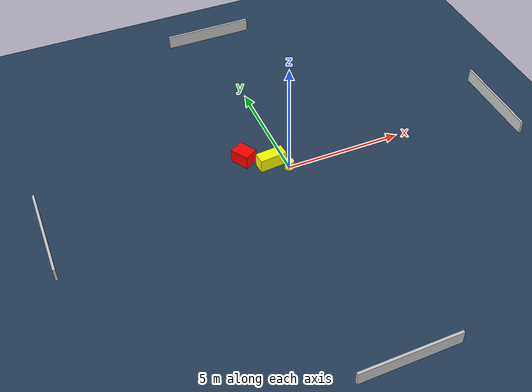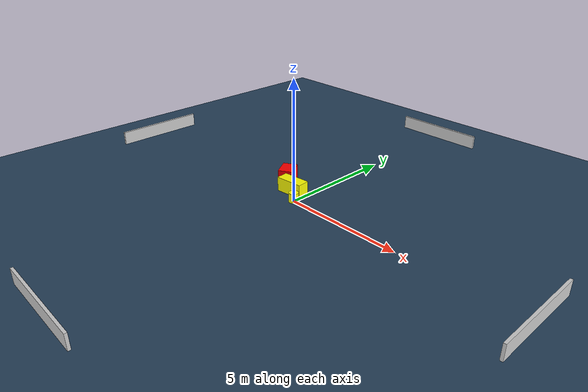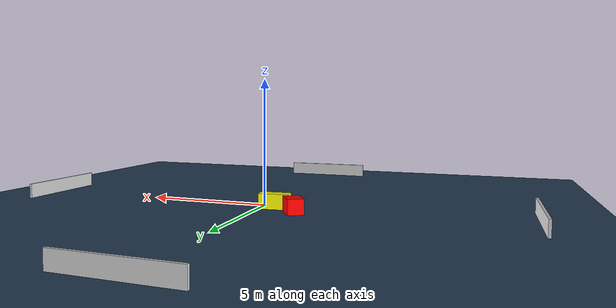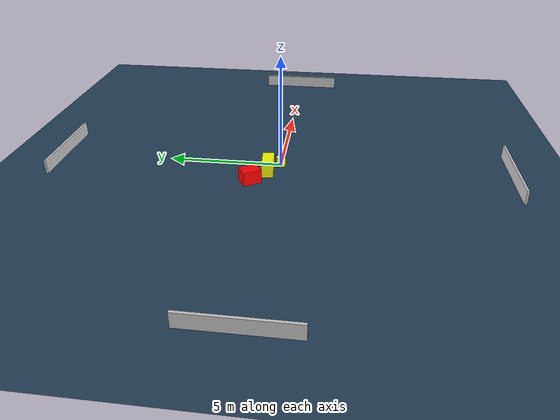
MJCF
<?xml version="1.0" ?>
<mujoco model="generated_environment">
  <option timestep="0.01" integrator="RK4" cone="elliptic"/>
  <default>
    <geom density="1"/>
  </default>
  <asset>
    <texture builtin="gradient" height="3072" name="skybox" rgb1="0.3 0.5 0.7" rgb2="0 0 0" type="skybox" width="512"/>
    <texture builtin="checker" height="300" name="groundplane" rgb1="0.2 0.3 0.4" rgb2="0.1 0.2 0.3" type="2d" width="300"/>
    <material name="groundplane" reflectance="0.2" texrepeat="5 5" texture="groundplane"/>
  </asset>
  <worldbody>
    <light dir="0 0 -1" directional="true" pos="0 0 1.5"/>
    <geom condim="3" friction="0.5 0.005 0.001" material="groundplane" name="floor" pos="0 0 0" size="0 0 0.05" type="plane"/>
    <body name="walls">
      <geom name="wall_1" condim="4" pos="-10.0 0.0 0.3" rgba="0.800000011920929 0.800000011920929 0.800000011920929 1.0" size="0.05 2.0 0.3" type="box"/>
      <geom name="wall_2" condim="4" pos="10.0 0.0 0.3" rgba="0.800000011920929 0.800000011920929 0.800000011920929 1.0" size="0.05 2.0 0.3" type="box"/>
      <geom name="wall_3" condim="4" pos="0.0 -10.0 0.3" rgba="0.800000011920929 0.800000011920929 0.800000011920929 1.0" size="2.0 0.05 0.3" type="box"/>
      <geom name="wall_4" condim="4" pos="0.0 10.0 0.3" rgba="0.800000011920929 0.800000011920929 0.800000011920929 1.0" size="2.0 0.05 0.3" type="box"/>
    </body>
    <body name="robot">
      <joint name="joint_x" type="slide" pos="0 0 0" axis="1 0 0"/>
      <joint name="joint_y" type="slide" pos="0 0 0" axis="0 1 0"/>
      <geom name="robot" type="cylinder" pos="0.0 0.0 0.2" size="0.2 0.2 0.0" mass="5.0" friction="1.0 0.005 0.0001" condim="4" rgba="1.0 1.0 0.0 1.0"/>
    </body>
    <body name="obstacle_1_movable">
      <geom name="obstacle_1_movable" condim="4" pos="-0.5946644535066139 0.49460955073979396 0.3" euler="0 0 95.01465607558465" friction="0.0 0.005 0.001" rgba="1.0 1.0 0.0 1.0" size="0.2537117497101298 0.5874755839183676 0.3" type="box" mass="0.1"/>
      <joint type="free"/>
    </body>
    <body name="obstacle_2_static">
      <geom name="obstacle_2_static" condim="4" pos="-1.5570477770385605 1.125704412941054 0.3" euler="0 0 120.86095118836748" friction="0.0 0.005 0.001" rgba="1.0 0.0 0.0 1.0" size="0.4039689855540398 0.31587076622972876 0.3" type="box"/>
    </body>
  </worldbody>
  <actuator>
    <motor name="actuator_x" joint="joint_x" gear="1" ctrlrange="-1 1"/>
    <motor name="actuator_y" joint="joint_y" gear="1" ctrlrange="-1 1"/>
  </actuator>
</mujoco>
